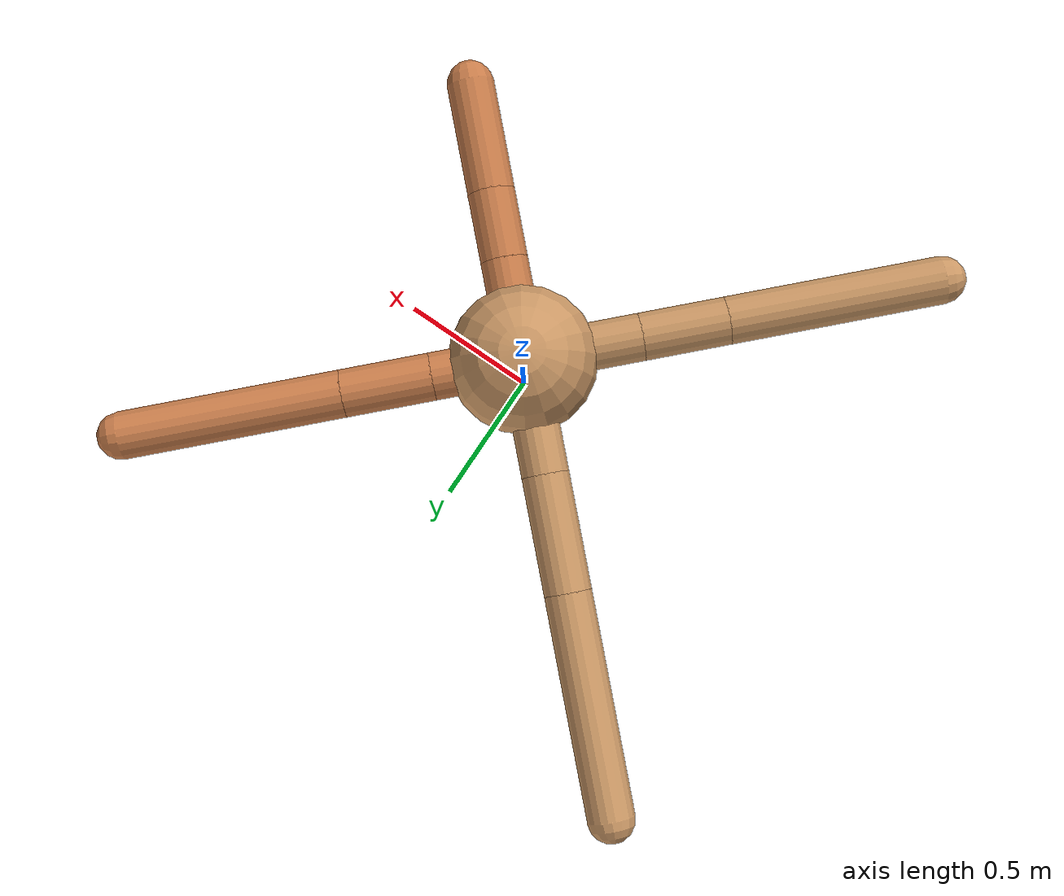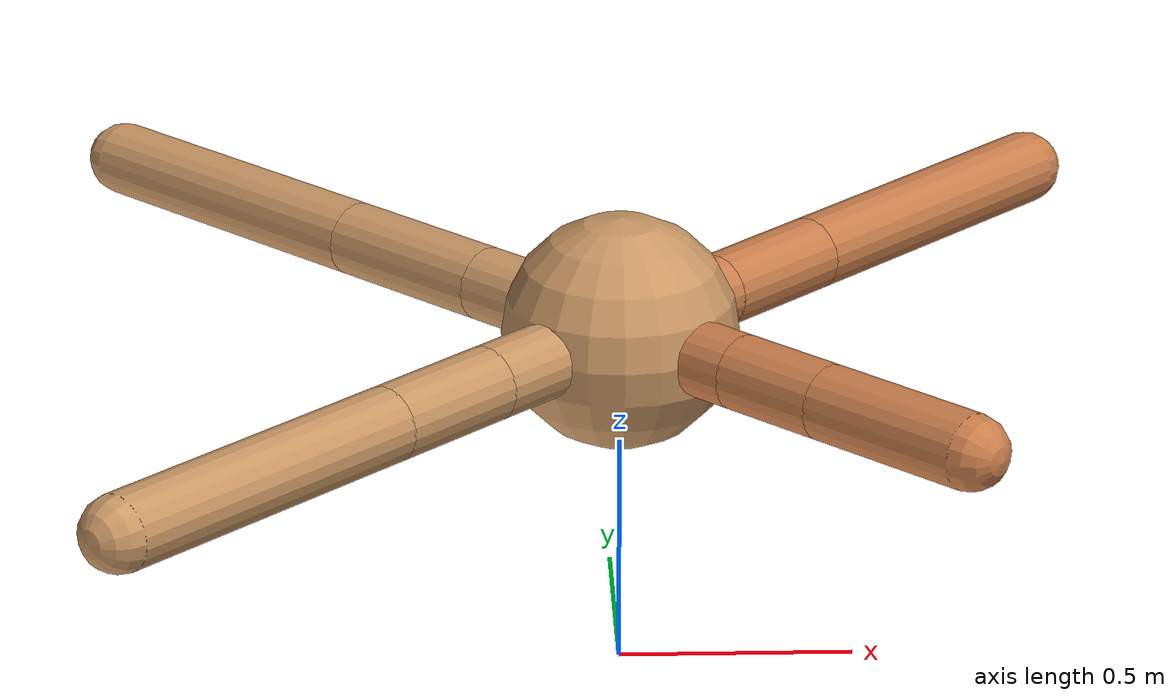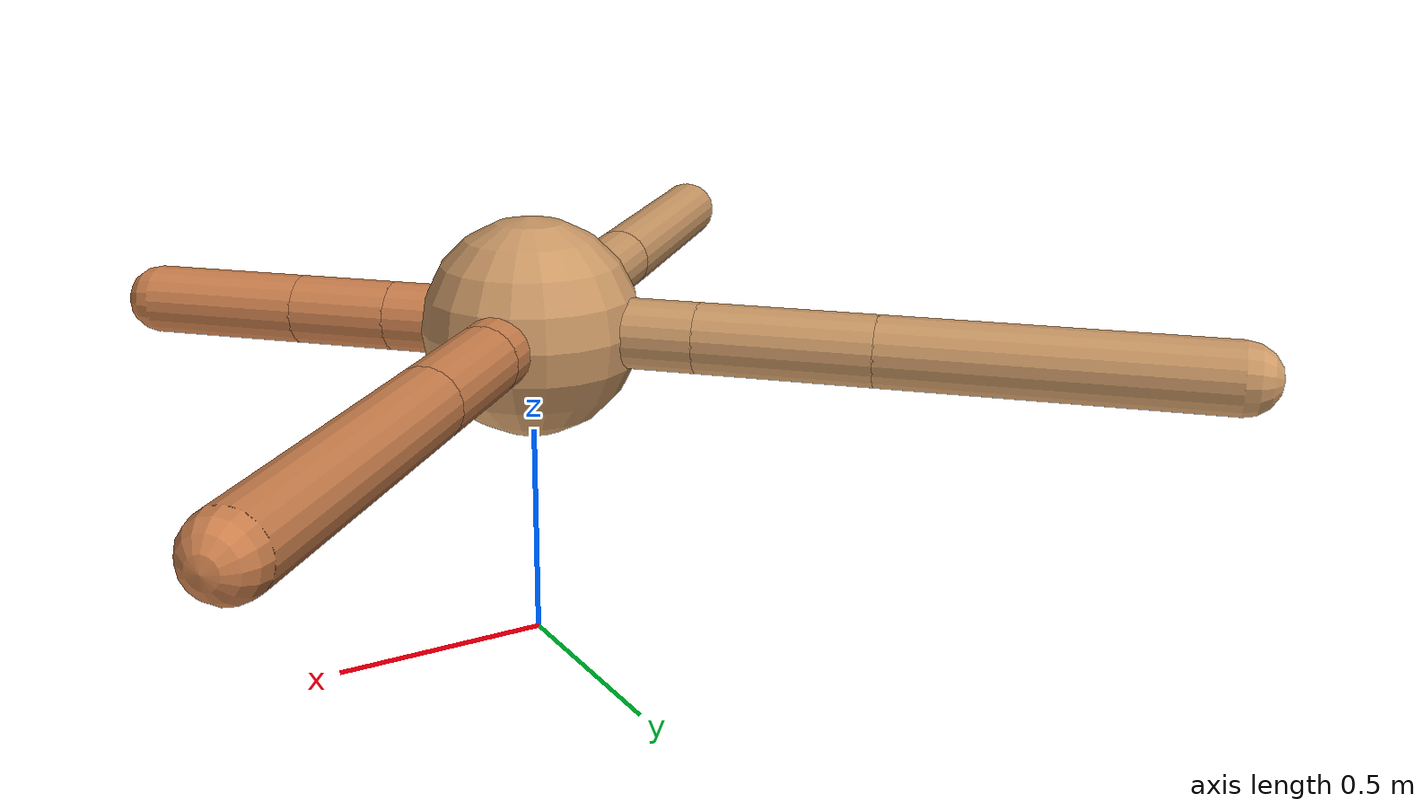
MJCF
<mujoco model="ant">
  <compiler angle="degree" coordinate="local" inertiafromgeom="true" />
  <option integrator="RK4" timestep="0.01" />
  <custom>
    <numeric data="0.0 0.0 0.55 1.0 0.0 0.0 0.0 0.0 1.0 0.0 -1.0 0.0 -1.0 0.0 1.0" name="init_qpos" />
  </custom>
  <default>
    <joint armature="1" damping="1" limited="true" />
    <geom conaffinity="0" condim="3" density="5.0" friction="1.5 0.1 0.1" margin="0.01" rgba="0.8 0.6 0.4 1" />
  </default>
  <worldbody>
    <body name="torso" pos="0 0 0.75">
      <geom name="torso_geom" pos="0 0 0" size="0.25" type="sphere" />

      <body name="front_left_leg" pos="0 0 0">
        <geom fromto="0.0 0.0 0.0 0.21586054606236768 0.21586054606236768 0.0" name="aux_1_geom" size="0.08" type="capsule" rgba=".8 .5 .3 1" />
        <body name="aux_1" pos="0.21586054606236768 0.21586054606236768 0.0">
          <joint axis="0 0 1" name="hip_1" pos="0.0 0.0 0.0" range="-40 40" type="hinge" />
          <geom fromto="0.0 0.0 0.0 0.21297807983094735 0.21297807983094735 0.0" name="left_leg_geom" size="0.08" type="capsule" rgba=".8 .5 .3 1" />
          <body pos="0.21297807983094735 0.21297807983094735 0.0" name="front_left_foot">
            <joint axis="-1 1 0" name="ankle_1" pos="0.0 0.0 0.0" range="30 100" type="hinge" />
            <geom fromto="0.0 0.0 0.0 0.5252455128854531 0.5252455128854531 0.0" name="left_ankle_geom" size="0.08" type="capsule" rgba=".8 .5 .3 1" />
          </body>
        </body>
      </body>
      <body name="front_right_leg" pos="0 0 0">
        <geom fromto="0.0 0.0 0.0 -0.2754038512451676 0.2754038512451676 0.0" name="aux_2_geom" size="0.08" type="capsule" />
        <body name="aux_2" pos="-0.2754038512451676 0.2754038512451676 0.0">
          <joint axis="0 0 1" name="hip_2" pos="0.0 0.0 0.0" range="-40 40" type="hinge" />
          <geom fromto="0.0 0.0 0.0 -0.2787530073933117 0.2787530073933117 0.0" name="right_leg_geom" size="0.08" type="capsule" />
          <body pos="-0.2787530073933117 0.2787530073933117 0.0" name="front_right_foot">
            <joint axis="1 1 0" name="ankle_2" pos="0.0 0.0 0.0" range="-100 -30" type="hinge" />
            <geom fromto="0.0 0.0 0.0 -0.5280547339870658 0.5280547339870658 0.0" name="right_ankle_geom" size="0.08" type="capsule" />
          </body>
        </body>
      </body>
      <body name="left_back_leg" pos="0 0 0">
        <geom fromto="0.0 0.0 0.0 -0.28116086709067795 -0.28116086709067795 0.0" name="aux_3_geom" size="0.08" type="capsule" />
        <body name="aux_3" pos="-0.28116086709067795 -0.28116086709067795 0.0">
          <joint axis="0 0 1" name="hip_3" pos="0.0 0.0 0.0" range="-40 40" type="hinge" />
          <geom fromto="0.0 0.0 0.0 -0.2049465465319271 -0.2049465465319271 0.0" name="back_leg_geom" size="0.08" type="capsule" />
          <body pos="-0.2049465465319271 -0.2049465465319271 0.0" name="left_back_foot">
            <joint axis="-1 1 0" name="ankle_3" pos="0.0 0.0 0.0" range="-100 -30" type="hinge" />
            <geom fromto="0.0 0.0 0.0 -0.5138899227487496 -0.5138899227487496 0.0" name="third_ankle_geom" size="0.08" type="capsule" />
          </body>
        </body>
      </body>
      <body name="right_back_leg" pos="0 0 0">
        <geom fromto="0.0 0.0 0.0 0.2376858541578348 -0.2376858541578348 0.0" name="aux_4_geom" size="0.08" type="capsule" rgba=".8 .5 .3 1" />
        <body name="aux_4" pos="0.2376858541578348 -0.2376858541578348 0.0">
          <joint axis="0 0 1" name="hip_4" pos="0.0 0.0 0.0" range="-40 40" type="hinge" />
          <geom fromto="0.0 0.0 0.0 0.16504289000536723 -0.16504289000536723 0.0" name="rightback_leg_geom" size="0.08" type="capsule" rgba=".8 .5 .3 1" />
          <body pos="0.16504289000536723 -0.16504289000536723 0.0" name="right_back_foot">
            <joint axis="1 1 0" name="ankle_4" pos="0.0 0.0 0.0" range="30 100" type="hinge" />
            <geom fromto="0.0 0.0 0.0 0.2639863572173035 -0.2639863572173035 0.0" name="fourth_ankle_geom" size="0.08" type="capsule" rgba=".8 .5 .3 1" />
          </body>
        </body>
      </body>
    </body>
  </worldbody>
  <actuator>
    <motor ctrllimited="true" ctrlrange="-1.0 1.0" joint="hip_4" gear="150" />
    <motor ctrllimited="true" ctrlrange="-1.0 1.0" joint="ankle_4" gear="150" />
    <motor ctrllimited="true" ctrlrange="-1.0 1.0" joint="hip_1" gear="150" />
    <motor ctrllimited="true" ctrlrange="-1.0 1.0" joint="ankle_1" gear="150" />
    <motor ctrllimited="true" ctrlrange="-1.0 1.0" joint="hip_2" gear="150" />
    <motor ctrllimited="true" ctrlrange="-1.0 1.0" joint="ankle_2" gear="150" />
    <motor ctrllimited="true" ctrlrange="-1.0 1.0" joint="hip_3" gear="150" />
    <motor ctrllimited="true" ctrlrange="-1.0 1.0" joint="ankle_3" gear="150" />
  </actuator>
</mujoco>
